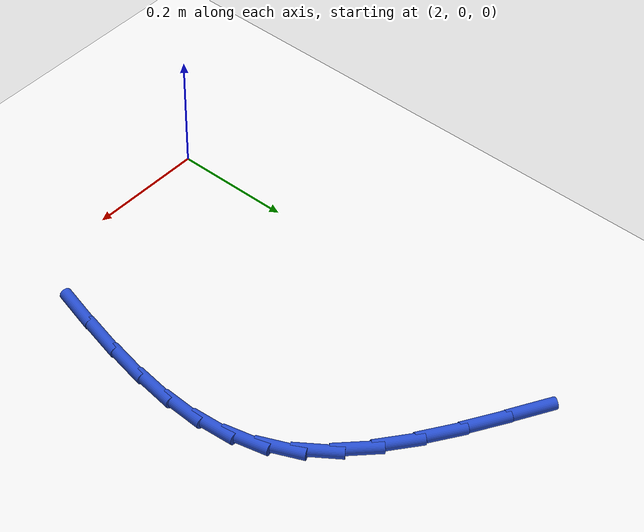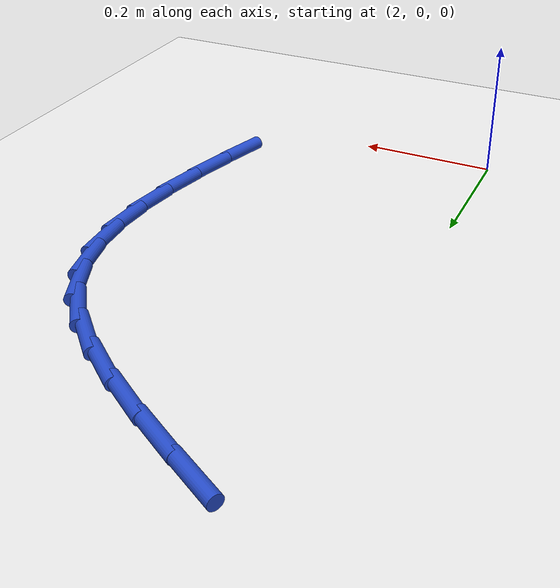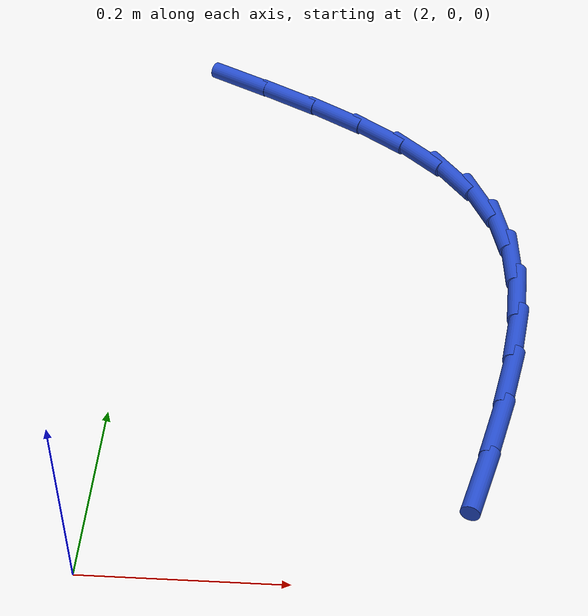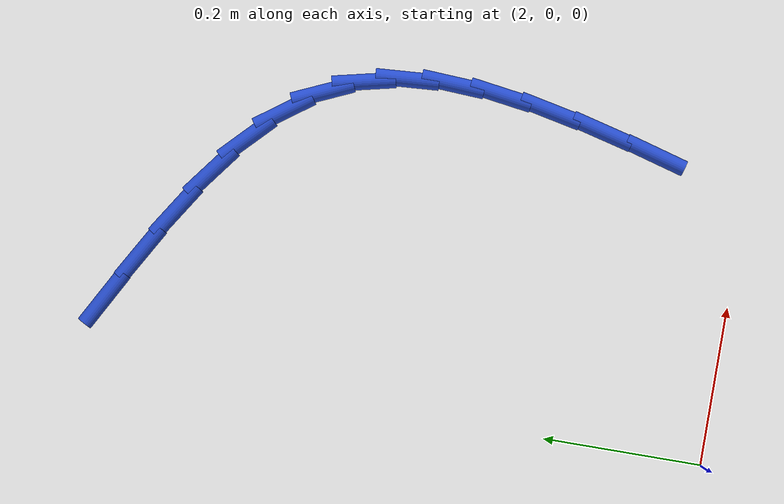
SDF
<sdf version="1.6">
 <world name="default">
  <model name="ground_plane">
   <static>1</static>
   <link name="link">
    <collision name="collision">
     <geometry><plane><normal>0 0 1</normal><size>100 100</size></plane></geometry>
     <surface><friction><ode><mu>100</mu><mu2>50</mu2></ode></friction></surface>
    </collision>
    <visual name="visual">
     <cast_shadows>0</cast_shadows>
     <geometry><plane><normal>0 0 1</normal><size>100 100</size></plane></geometry>
     <material>
      <script><uri>file://media/materials/scripts/gazebo.material</uri><name>Gazebo/WhiteGlow</name></script>
     </material>
    </visual>
   </link>
  </model>
  <model name="line">
   <link name="link_42">
    <pose>2.081401386648926 0.7707223828194125 0.01 0 1.57 -0.5021836978419382</pose>
    <collision name="collision">
     <geometry><cylinder><radius>0.01</radius><length>0.08</length></cylinder></geometry>
    </collision>
    <visual name="visual">
     <material>
      <script><name>Gazebo/Blue</name><uri>file://media/materials/scripts/gazebo.material</uri></script>
     </material>
     <geometry><cylinder><radius>0.01</radius><length>0.08</length></cylinder></geometry>
    </visual>
   </link>
   <link name="link_43">
    <pose>2.1449130617347283 0.7358454992795562 0.01 0 1.57 -0.524113833888073</pose>
    <collision name="collision">
     <geometry><cylinder><radius>0.01</radius><length>0.08</length></cylinder></geometry>
    </collision>
    <visual name="visual">
     <material>
      <script><name>Gazebo/Blue</name><uri>file://media/materials/scripts/gazebo.material</uri></script>
     </material>
     <geometry><cylinder><radius>0.01</radius><length>0.08</length></cylinder></geometry>
    </visual>
   </link>
   <link name="link_44">
    <pose>2.204821897245712 0.7012159626723186 0.01 0 1.57 -0.572373150412843</pose>
    <collision name="collision">
     <geometry><cylinder><radius>0.01</radius><length>0.08</length></cylinder></geometry>
    </collision>
    <visual name="visual">
     <material>
      <script><name>Gazebo/Blue</name><uri>file://media/materials/scripts/gazebo.material</uri></script>
     </material>
     <geometry><cylinder><radius>0.01</radius><length>0.08</length></cylinder></geometry>
    </visual>
   </link>
   <link name="link_45">
    <pose>2.259757933628257 0.6658194770546614 0.01 0 1.57 -0.6530824723171846</pose>
    <collision name="collision">
     <geometry><cylinder><radius>0.01</radius><length>0.08</length></cylinder></geometry>
    </collision>
    <visual name="visual">
     <material>
      <script><name>Gazebo/Blue</name><uri>file://media/materials/scripts/gazebo.material</uri></script>
     </material>
     <geometry><cylinder><radius>0.01</radius><length>0.08</length></cylinder></geometry>
    </visual>
   </link>
   <link name="link_46">
    <pose>2.3083512113287443 0.6286417464835463 0.01 0 1.57 -0.7741772984340924</pose>
    <collision name="collision">
     <geometry><cylinder><radius>0.01</radius><length>0.08</length></cylinder></geometry>
    </collision>
    <visual name="visual">
     <material>
      <script><name>Gazebo/Blue</name><uri>file://media/materials/scripts/gazebo.material</uri></script>
     </material>
     <geometry><cylinder><radius>0.01</radius><length>0.08</length></cylinder></geometry>
    </visual>
   </link>
   <link name="link_47">
    <pose>2.3492317707935535 0.5886684750159346 0.01 0 1.57 -0.9426633145403769</pose>
    <collision name="collision">
     <geometry><cylinder><radius>0.01</radius><length>0.08</length></cylinder></geometry>
    </collision>
    <visual name="visual">
     <material>
      <script><name>Gazebo/Blue</name><uri>file://media/materials/scripts/gazebo.material</uri></script>
     </material>
     <geometry><cylinder><radius>0.01</radius><length>0.08</length></cylinder></geometry>
    </visual>
   </link>
   <link name="link_48">
    <pose>2.3810296524690644 0.5448853667087877 0.01 0 1.57 -1.1501289947238025</pose>
    <collision name="collision">
     <geometry><cylinder><radius>0.01</radius><length>0.08</length></cylinder></geometry>
    </collision>
    <visual name="visual">
     <material>
      <script><name>Gazebo/Blue</name><uri>file://media/materials/scripts/gazebo.material</uri></script>
     </material>
     <geometry><cylinder><radius>0.01</radius><length>0.08</length></cylinder></geometry>
    </visual>
   </link>
   <link name="link_49">
    <pose>2.402697472615494 0.4964519332995232 0.01 0 1.57 -1.3453637550649076</pose>
    <collision name="collision">
     <geometry><cylinder><radius>0.01</radius><length>0.08</length></cylinder></geometry>
    </collision>
    <visual name="visual">
     <material>
      <script><name>Gazebo/Blue</name><uri>file://media/materials/scripts/gazebo.material</uri></script>
     </material>
     <geometry><cylinder><radius>0.01</radius><length>0.08</length></cylinder></geometry>
    </visual>
   </link>
   <link name="link_50">
    <pose>2.414857626916591 0.4434273835146968 0.01 0 1.57 -1.5043011405214535</pose>
    <collision name="collision">
     <geometry><cylinder><radius>0.01</radius><length>0.08</length></cylinder></geometry>
    </collision>
    <visual name="visual">
     <material>
      <script><name>Gazebo/Blue</name><uri>file://media/materials/scripts/gazebo.material</uri></script>
     </material>
     <geometry><cylinder><radius>0.01</radius><length>0.08</length></cylinder></geometry>
    </visual>
   </link>
   <link name="link_51">
    <pose>2.4186711770699234 0.38616116572806236 0.01 0 1.57 1.5157209186540386</pose>
    <collision name="collision">
     <geometry><cylinder><radius>0.01</radius><length>0.08</length></cylinder></geometry>
    </collision>
    <visual name="visual">
     <material>
      <script><name>Gazebo/Blue</name><uri>file://media/materials/scripts/gazebo.material</uri></script>
     </material>
     <geometry><cylinder><radius>0.01</radius><length>0.08</length></cylinder></geometry>
    </visual>
   </link>
   <link name="link_52">
    <pose>2.4152994491697672 0.32500287077345996 0.01 0 1.57 1.4265869789500767</pose>
    <collision name="collision">
     <geometry><cylinder><radius>0.01</radius><length>0.08</length></cylinder></geometry>
    </collision>
    <visual name="visual">
     <material>
      <script><name>Gazebo/Blue</name><uri>file://media/materials/scripts/gazebo.material</uri></script>
     </material>
     <geometry><cylinder><radius>0.01</radius><length>0.08</length></cylinder></geometry>
    </visual>
   </link>
   <link name="link_53">
    <pose>2.4059037693103953 0.2603020894847286 0.01 0 1.57 1.3637951945414803</pose>
    <collision name="collision">
     <geometry><cylinder><radius>0.01</radius><length>0.08</length></cylinder></geometry>
    </collision>
    <visual name="visual">
     <material>
      <script><name>Gazebo/Blue</name><uri>file://media/materials/scripts/gazebo.material</uri></script>
     </material>
     <geometry><cylinder><radius>0.01</radius><length>0.08</length></cylinder></geometry>
    </visual>
   </link>
   <link name="link_54">
    <pose>2.3916454635860815 0.1924084126957076 0.01 0 1.57 1.322157284678986</pose>
    <collision name="collision">
     <geometry><cylinder><radius>0.01</radius><length>0.08</length></cylinder></geometry>
    </collision>
    <visual name="visual">
     <material>
      <script><name>Gazebo/Blue</name><uri>file://media/materials/scripts/gazebo.material</uri></script>
     </material>
     <geometry><cylinder><radius>0.01</radius><length>0.08</length></cylinder></geometry>
    </visual>
   </link>
   <link name="link_55">
    <pose>2.3736858580911004 0.12167143124023652 0.01 0 1.57 1.2978511348213357</pose>
    <collision name="collision">
     <geometry><cylinder><radius>0.01</radius><length>0.08</length></cylinder></geometry>
    </collision>
    <visual name="visual">
     <material>
      <script><name>Gazebo/Blue</name><uri>file://media/materials/scripts/gazebo.material</uri></script>
     </material>
     <geometry><cylinder><radius>0.01</radius><length>0.08</length></cylinder></geometry>
    </visual>
   </link>
  </model>
 </world>
</sdf>
